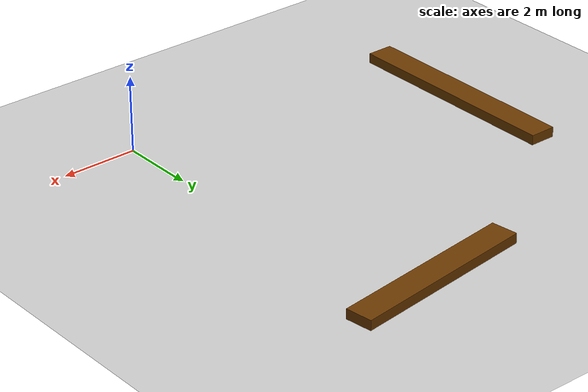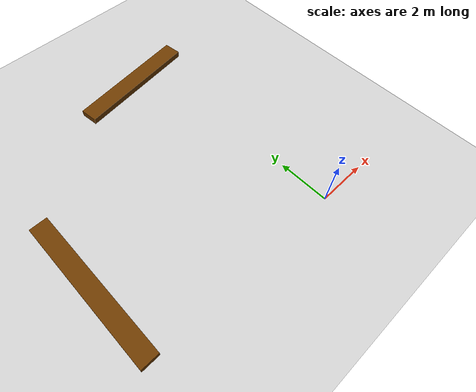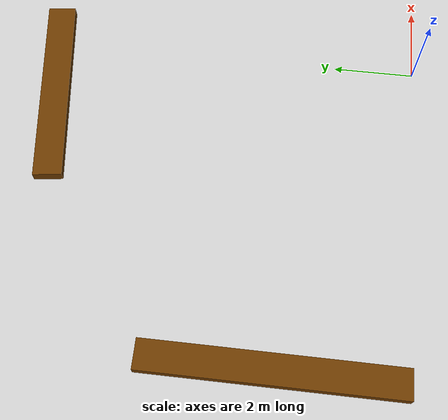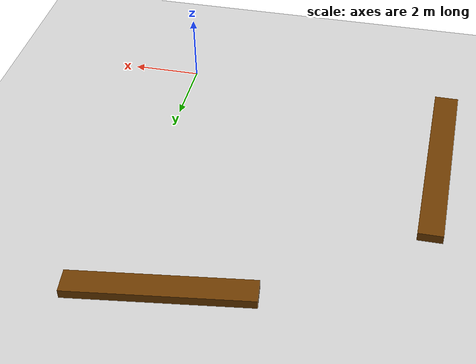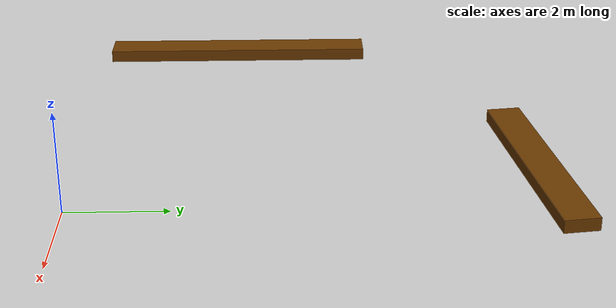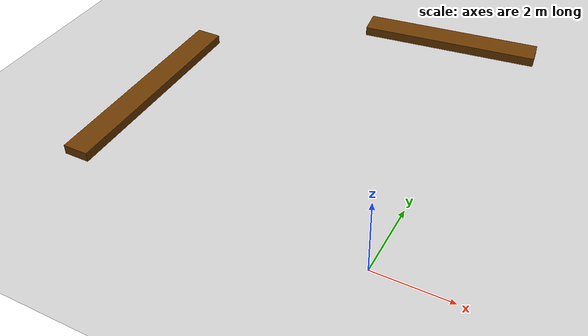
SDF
<?xml version="1.0"?>
<sdf version="1.4">
<world name="racecar_walker">

  <scene>
    <ambient>0.5 0.5 0.5 1.0</ambient>
    <shadows>0</shadows>
  </scene>

  <include>
    <uri>model://sun</uri>
    <pose>0.0 0.0 15.0 0 0 0</pose>
    <cast_shadows>false</cast_shadows>
    <attenuation>
      <constant>0.5</constant>
      <linear>0.01</linear>
      <quadratic>0.0</quadratic>
      <range>100</range>
    </attenuation>
  </include>

  <light type="point" name="Light 1">
              <pose>0 0 15 0 0 0</pose>
              <diffuse>.9 .9 .9 1</diffuse>
              <specular>.1 .1 .1 1</specular>
              <attenuation>
              <constant>0.5</constant>
              <linear>0.01</linear>
              <quadratic>0.0</quadratic>
              <range>50</range>
              </attenuation>
              <direction>0 0 -1</direction>
              <cast_shadows>false</cast_shadows>
          </light>

  <model name='ground_plane'>
      <static>1</static>
      <link name='link'>
        <collision name='collision'>
          <geometry>
            <plane>
              <normal>0 0 1</normal>
              <size>100 100</size>
            </plane>
          </geometry>
          <surface>
            <friction>
              <ode>
                <mu>1000</mu>
                <mu2>500</mu2>
              </ode>
              <torsional>
                <ode/>
              </torsional>
            </friction>
            <contact>
              <ode/>
            </contact>
            <bounce/>
          </surface>
          <max_contacts>10</max_contacts>
        </collision>
        <visual name='visual'>
          <cast_shadows>0</cast_shadows>
          <geometry>
            <plane>
              <normal>0 0 1</normal>
              <size>100 100</size>
            </plane>
          </geometry>
          <material>
            <script>
              <uri>file://media/materials/scripts/gazebo.material</uri>
              <name>Gazebo/Grey</name>
            </script>
          </material>
        </visual>
        <self_collide>0</self_collide>
        <kinematic>0</kinematic>
        <gravity>1</gravity>
      </link>
  </model>

  <model name='reroute'>
      <static>1</static>
      <link name="wall1">
		<pose>-1.5 9.1 0 0 0 1.7</pose>
			<collision name="wall1_collision">
                    <geometry>
                        <box>
                            <size>0.7 5 0.5</size>
                        </box>
                    </geometry>
                </collision>
                <visual name="wall1_visual">
                    <geometry>
                        <box>
                            <size>0.7 5 0.5</size>
                        </box>
                    </geometry>
                    <material>
                        <ambient>0.2 0.2 0.2 1.0</ambient>
                        <diffuse>.421 0.225 0.0 1.0</diffuse>
                    </material>
                </visual>
       </link>
       <link name="wall2">
		<pose>-8 3 0 0 0 0</pose>
			<collision name="wall2_collision">
                    <geometry>
                        <box>
                            <size>0.7 6 0.5</size>
                        </box>
                    </geometry>
                </collision>
                <visual name="wall2_visual">
                    <geometry>
                        <box>
                            <size>0.7 6 0.5</size>
                        </box>
                    </geometry>
                    <material>
                        <ambient>0.2 0.2 0.2 1.0</ambient>
                        <diffuse>.421 0.225 0.0 1.0</diffuse>
                    </material>
                </visual>
       </link>
	</model>

</world>
</sdf>
